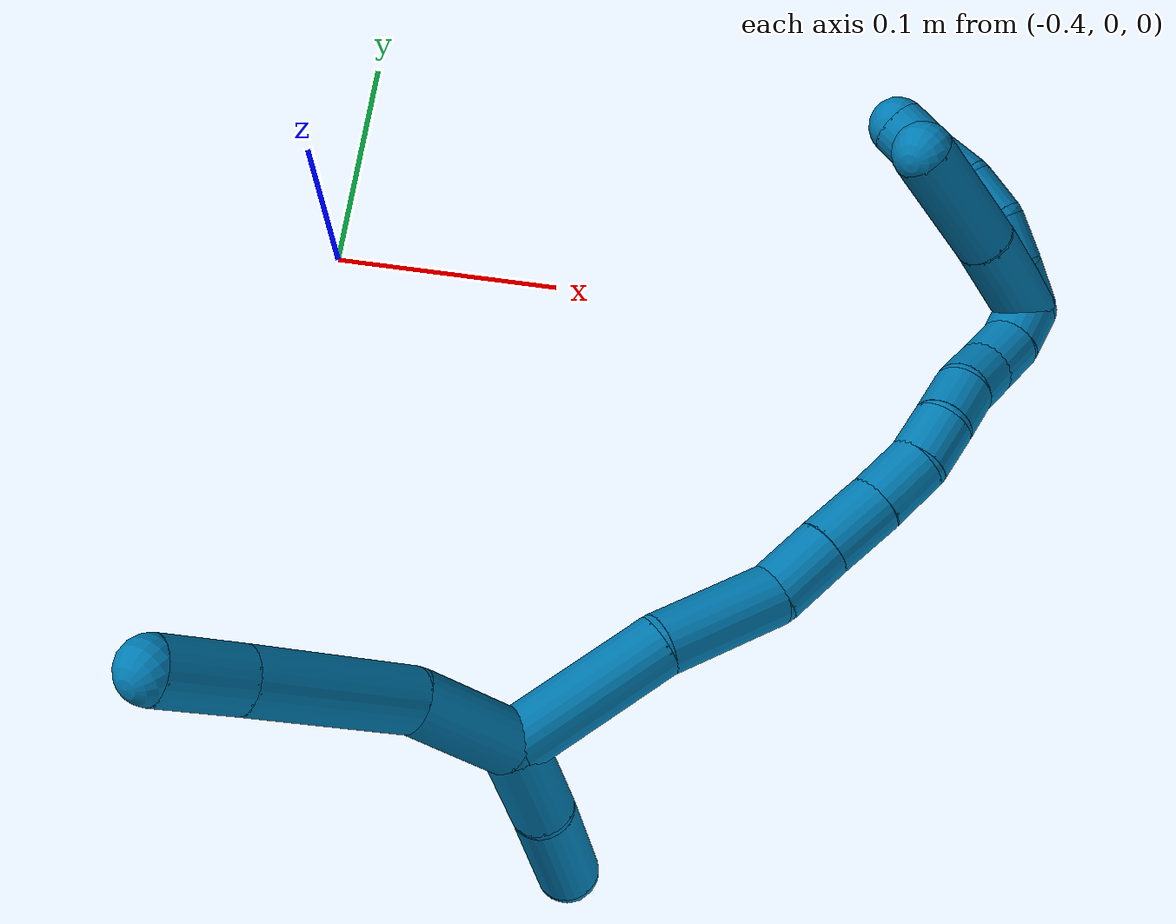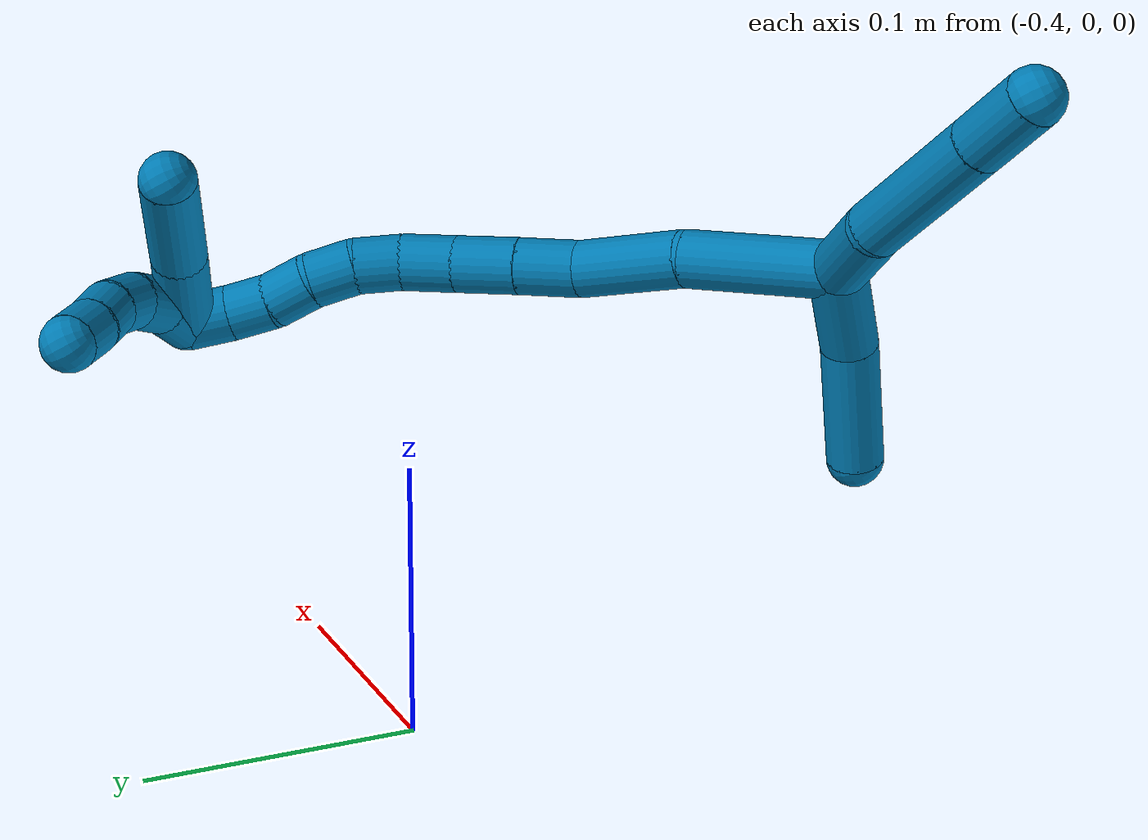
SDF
<sdf version="1.7">
 <world name="default">
  <model name="9">
   <static>0</static>
   <link name="9">
    <collision name="collision-cylinder-e_1_2_8">
     <pose>-0.010497 0.015371 0.012439 -0.890436 -0.488027 0.236499</pose>
     <geometry><cylinder><radius>0.0125</radius><length>0.044773</length></cylinder></geometry>
     <surface>
      <friction><ode><mu>1.16</mu><mu2>1.16</mu2><slip1>0</slip1><slip2>0</slip2></ode></friction>
      <contact><ode><kp>1e+06</kp><kd>1</kd><max_vel>0</max_vel><min_depth>0.001</min_depth></ode></contact>
     </surface>
    </collision>
    <visual name="visual-cylinder-e_1_2_8">
     <pose>-0.010497 0.015371 0.012439 -0.890436 -0.488027 0.236499</pose>
     <geometry><cylinder><radius>0.0125</radius><length>0.044773</length></cylinder></geometry>
     <material><ambient>0 0.490196 0.709804 1</ambient></material>
    </visual>
    <collision name="collision-cylinder-e_2_8_9">
     <pose>-0.033324 0.049646 0.051744 -0.613176 -0.359089 0.114788</pose>
     <geometry><cylinder><radius>0.0125</radius><length>0.070178</length></cylinder></geometry>
     <surface>
      <friction><ode><mu>1.16</mu><mu2>1.16</mu2><slip1>0</slip1><slip2>0</slip2></ode></friction>
      <contact><ode><kp>1e+06</kp><kd>1</kd><max_vel>0</max_vel><min_depth>0.001</min_depth></ode></contact>
     </surface>
    </collision>
    <visual name="visual-cylinder-e_2_8_9">
     <pose>-0.033324 0.049646 0.051744 -0.613176 -0.359089 0.114788</pose>
     <geometry><cylinder><radius>0.0125</radius><length>0.070178</length></cylinder></geometry>
     <material><ambient>0 0.490196 0.709804 1</ambient></material>
    </visual>
    <collision name="collision-cylinder-e_3_9_6">
     <pose>-0.051576 0.07794 0.092171 -0.605596 -0.344633 0.108636</pose>
     <geometry><cylinder><radius>0.0125</radius><length>0.035049</length></cylinder></geometry>
     <surface>
      <friction><ode><mu>1.16</mu><mu2>1.16</mu2><slip1>0</slip1><slip2>0</slip2></ode></friction>
      <contact><ode><kp>1e+06</kp><kd>1</kd><max_vel>0</max_vel><min_depth>0.001</min_depth></ode></contact>
     </surface>
    </collision>
    <visual name="visual-cylinder-e_3_9_6">
     <pose>-0.051576 0.07794 0.092171 -0.605596 -0.344633 0.108636</pose>
     <geometry><cylinder><radius>0.0125</radius><length>0.035049</length></cylinder></geometry>
     <material><ambient>0 0.490196 0.709804 1</ambient></material>
    </visual>
    <collision name="collision-cylinder-e_1_2_10">
     <pose>-0.000909 -0.019937 -0.006343 1.87881 -0.043435 -0.05939</pose>
     <geometry><cylinder><radius>0.0125</radius><length>0.041883</length></cylinder></geometry>
     <surface>
      <friction><ode><mu>1.16</mu><mu2>1.16</mu2><slip1>0</slip1><slip2>0</slip2></ode></friction>
      <contact><ode><kp>1e+06</kp><kd>1</kd><max_vel>0</max_vel><min_depth>0.001</min_depth></ode></contact>
     </surface>
    </collision>
    <visual name="visual-cylinder-e_1_2_10">
     <pose>-0.000909 -0.019937 -0.006343 1.87881 -0.043435 -0.05939</pose>
     <geometry><cylinder><radius>0.0125</radius><length>0.041883</length></cylinder></geometry>
     <material><ambient>0 0.490196 0.709804 1</ambient></material>
    </visual>
    <collision name="collision-cylinder-e_2_10_5">
     <pose>-0.007891 -0.065749 -0.024435 1.99707 -0.210513 -0.325119</pose>
     <geometry><cylinder><radius>0.0125</radius><length>0.058117</length></cylinder></geometry>
     <surface>
      <friction><ode><mu>1.16</mu><mu2>1.16</mu2><slip1>0</slip1><slip2>0</slip2></ode></friction>
      <contact><ode><kp>1e+06</kp><kd>1</kd><max_vel>0</max_vel><min_depth>0.001</min_depth></ode></contact>
     </surface>
    </collision>
    <visual name="visual-cylinder-e_2_10_5">
     <pose>-0.007891 -0.065749 -0.024435 1.99707 -0.210513 -0.325119</pose>
     <geometry><cylinder><radius>0.0125</radius><length>0.058117</length></cylinder></geometry>
     <material><ambient>0 0.490196 0.709804 1</ambient></material>
    </visual>
    <collision name="collision-cylinder-e_1_2_11">
     <pose>0.015965 0.007821 -0.028222 -2.87126 0.499119 -2.16129</pose>
     <geometry><cylinder><radius>0.0125</radius><length>0.066709</length></cylinder></geometry>
     <surface>
      <friction><ode><mu>1.16</mu><mu2>1.16</mu2><slip1>0</slip1><slip2>0</slip2></ode></friction>
      <contact><ode><kp>1e+06</kp><kd>1</kd><max_vel>0</max_vel><min_depth>0.001</min_depth></ode></contact>
     </surface>
    </collision>
    <visual name="visual-cylinder-e_1_2_11">
     <pose>0.015965 0.007821 -0.028222 -2.87126 0.499119 -2.16129</pose>
     <geometry><cylinder><radius>0.0125</radius><length>0.066709</length></cylinder></geometry>
     <material><ambient>0 0.490196 0.709804 1</ambient></material>
    </visual>
    <collision name="collision-cylinder-e_2_11_12">
     <pose>0.043966 0.015918 -0.078977 -3.12931 0.490537 -3.09254</pose>
     <geometry><cylinder><radius>0.0125</radius><length>0.051094</length></cylinder></geometry>
     <surface>
      <friction><ode><mu>1.16</mu><mu2>1.16</mu2><slip1>0</slip1><slip2>0</slip2></ode></friction>
      <contact><ode><kp>1e+06</kp><kd>1</kd><max_vel>0</max_vel><min_depth>0.001</min_depth></ode></contact>
     </surface>
    </collision>
    <visual name="visual-cylinder-e_2_11_12">
     <pose>0.043966 0.015918 -0.078977 -3.12931 0.490537 -3.09254</pose>
     <geometry><cylinder><radius>0.0125</radius><length>0.051094</length></cylinder></geometry>
     <material><ambient>0 0.490196 0.709804 1</ambient></material>
    </visual>
    <collision name="collision-cylinder-e_3_12_13">
     <pose>0.061169 0.02064 -0.113549 -2.7879 0.382785 -1.65158</pose>
     <geometry><cylinder><radius>0.0125</radius><length>0.02767</length></cylinder></geometry>
     <surface>
      <friction><ode><mu>1.16</mu><mu2>1.16</mu2><slip1>0</slip1><slip2>0</slip2></ode></friction>
      <contact><ode><kp>1e+06</kp><kd>1</kd><max_vel>0</max_vel><min_depth>0.001</min_depth></ode></contact>
     </surface>
    </collision>
    <visual name="visual-cylinder-e_3_12_13">
     <pose>0.061169 0.02064 -0.113549 -2.7879 0.382785 -1.65158</pose>
     <geometry><cylinder><radius>0.0125</radius><length>0.02767</length></cylinder></geometry>
     <material><ambient>0 0.490196 0.709804 1</ambient></material>
    </visual>
    <collision name="collision-cylinder-e_4_13_14">
     <pose>0.07171 0.029215 -0.137944 -2.81901 0.391221 -1.76659</pose>
     <geometry><cylinder><radius>0.0125</radius><length>0.028185</length></cylinder></geometry>
     <surface>
      <friction><ode><mu>1.16</mu><mu2>1.16</mu2><slip1>0</slip1><slip2>0</slip2></ode></friction>
      <contact><ode><kp>1e+06</kp><kd>1</kd><max_vel>0</max_vel><min_depth>0.001</min_depth></ode></contact>
     </surface>
    </collision>
    <visual name="visual-cylinder-e_4_13_14">
     <pose>0.07171 0.029215 -0.137944 -2.81901 0.391221 -1.76659</pose>
     <geometry><cylinder><radius>0.0125</radius><length>0.028185</length></cylinder></geometry>
     <material><ambient>0 0.490196 0.709804 1</ambient></material>
    </visual>
    <collision name="collision-cylinder-e_5_14_15">
     <pose>0.081424 0.037418 -0.161115 -2.78145 0.359288 -1.56836</pose>
     <geometry><cylinder><radius>0.0125</radius><length>0.024689</length></cylinder></geometry>
     <surface>
      <friction><ode><mu>1.16</mu><mu2>1.16</mu2><slip1>0</slip1><slip2>0</slip2></ode></friction>
      <contact><ode><kp>1e+06</kp><kd>1</kd><max_vel>0</max_vel><min_depth>0.001</min_depth></ode></contact>
     </surface>
    </collision>
    <visual name="visual-cylinder-e_5_14_15">
     <pose>0.081424 0.037418 -0.161115 -2.78145 0.359288 -1.56836</pose>
     <geometry><cylinder><radius>0.0125</radius><length>0.024689</length></cylinder></geometry>
     <material><ambient>0 0.490196 0.709804 1</ambient></material>
    </visual>
    <collision name="collision-cylinder-e_6_15_16">
     <pose>0.087133 0.045663 -0.181504 -2.73065 0.130356 -0.60701</pose>
     <geometry><cylinder><radius>0.0125</radius><length>0.021067</length></cylinder></geometry>
     <surface>
      <friction><ode><mu>1.16</mu><mu2>1.16</mu2><slip1>0</slip1><slip2>0</slip2></ode></friction>
      <contact><ode><kp>1e+06</kp><kd>1</kd><max_vel>0</max_vel><min_depth>0.001</min_depth></ode></contact>
     </surface>
    </collision>
    <visual name="visual-cylinder-e_6_15_16">
     <pose>0.087133 0.045663 -0.181504 -2.73065 0.130356 -0.60701</pose>
     <geometry><cylinder><radius>0.0125</radius><length>0.021067</length></cylinder></geometry>
     <material><ambient>0 0.490196 0.709804 1</ambient></material>
    </visual>
    <collision name="collision-cylinder-e_7_16_17">
     <pose>0.088466 0.052125 -0.20101 -2.91491 -0.003622 0.031816</pose>
     <geometry><cylinder><radius>0.0125</radius><length>0.020384</length></cylinder></geometry>
     <surface>
      <friction><ode><mu>1.16</mu><mu2>1.16</mu2><slip1>0</slip1><slip2>0</slip2></ode></friction>
      <contact><ode><kp>1e+06</kp><kd>1</kd><max_vel>0</max_vel><min_depth>0.001</min_depth></ode></contact>
     </surface>
    </collision>
    <visual name="visual-cylinder-e_7_16_17">
     <pose>0.088466 0.052125 -0.20101 -2.91491 -0.003622 0.031816</pose>
     <geometry><cylinder><radius>0.0125</radius><length>0.020384</length></cylinder></geometry>
     <material><ambient>0 0.490196 0.709804 1</ambient></material>
    </visual>
    <collision name="collision-cylinder-e_8_17_18">
     <pose>0.088626 0.054274 -0.220953 3.12743 0.019722 1.89571</pose>
     <geometry><cylinder><radius>0.0125</radius><length>0.020029</length></cylinder></geometry>
     <surface>
      <friction><ode><mu>1.16</mu><mu2>1.16</mu2><slip1>0</slip1><slip2>0</slip2></ode></friction>
      <contact><ode><kp>1e+06</kp><kd>1</kd><max_vel>0</max_vel><min_depth>0.001</min_depth></ode></contact>
     </surface>
    </collision>
    <visual name="visual-cylinder-e_8_17_18">
     <pose>0.088626 0.054274 -0.220953 3.12743 0.019722 1.89571</pose>
     <geometry><cylinder><radius>0.0125</radius><length>0.020029</length></cylinder></geometry>
     <material><ambient>0 0.490196 0.709804 1</ambient></material>
    </visual>
    <collision name="collision-cylinder-e_9_18_19">
     <pose>0.090271 0.05549 -0.240794 -3.00437 0.144873 -1.62517</pose>
     <geometry><cylinder><radius>0.0125</radius><length>0.020054</length></cylinder></geometry>
     <surface>
      <friction><ode><mu>1.16</mu><mu2>1.16</mu2><slip1>0</slip1><slip2>0</slip2></ode></friction>
      <contact><ode><kp>1e+06</kp><kd>1</kd><max_vel>0</max_vel><min_depth>0.001</min_depth></ode></contact>
     </surface>
    </collision>
    <visual name="visual-cylinder-e_9_18_19">
     <pose>0.090271 0.05549 -0.240794 -3.00437 0.144873 -1.62517</pose>
     <geometry><cylinder><radius>0.0125</radius><length>0.020054</length></cylinder></geometry>
     <material><ambient>0 0.490196 0.709804 1</ambient></material>
    </visual>
    <collision name="collision-cylinder-e_10_19_1">
     <pose>0.091763 0.060284 -0.260076 -2.79284 0.004353 -0.024706</pose>
     <geometry><cylinder><radius>0.0125</radius><length>0.020117</length></cylinder></geometry>
     <surface>
      <friction><ode><mu>1.16</mu><mu2>1.16</mu2><slip1>0</slip1><slip2>0</slip2></ode></friction>
      <contact><ode><kp>1e+06</kp><kd>1</kd><max_vel>0</max_vel><min_depth>0.001</min_depth></ode></contact>
     </surface>
    </collision>
    <visual name="visual-cylinder-e_10_19_1">
     <pose>0.091763 0.060284 -0.260076 -2.79284 0.004353 -0.024706</pose>
     <geometry><cylinder><radius>0.0125</radius><length>0.020117</length></cylinder></geometry>
     <material><ambient>0 0.490196 0.709804 1</ambient></material>
    </visual>
    <collision name="collision-cylinder-e_1_1_20">
     <pose>0.088773 0.073246 -0.269819 -1.60125 -0.30821 0.317583</pose>
     <geometry><cylinder><radius>0.0125</radius><length>0.02</length></cylinder></geometry>
     <surface>
      <friction><ode><mu>1.16</mu><mu2>1.16</mu2><slip1>0</slip1><slip2>0</slip2></ode></friction>
      <contact><ode><kp>1e+06</kp><kd>1</kd><max_vel>0</max_vel><min_depth>0.001</min_depth></ode></contact>
     </surface>
    </collision>
    <visual name="visual-cylinder-e_1_1_20">
     <pose>0.088773 0.073246 -0.269819 -1.60125 -0.30821 0.317583</pose>
     <geometry><cylinder><radius>0.0125</radius><length>0.02</length></cylinder></geometry>
     <material><ambient>0 0.490196 0.709804 1</ambient></material>
    </visual>
    <collision name="collision-cylinder-e_2_20_21">
     <pose>0.081253 0.091378 -0.272514 -1.84324 -0.465223 0.605149</pose>
     <geometry><cylinder><radius>0.0125</radius><length>0.02</length></cylinder></geometry>
     <surface>
      <friction><ode><mu>1.16</mu><mu2>1.16</mu2><slip1>0</slip1><slip2>0</slip2></ode></friction>
      <contact><ode><kp>1e+06</kp><kd>1</kd><max_vel>0</max_vel><min_depth>0.001</min_depth></ode></contact>
     </surface>
    </collision>
    <visual name="visual-cylinder-e_2_20_21">
     <pose>0.081253 0.091378 -0.272514 -1.84324 -0.465223 0.605149</pose>
     <geometry><cylinder><radius>0.0125</radius><length>0.02</length></cylinder></geometry>
     <material><ambient>0 0.490196 0.709804 1</ambient></material>
    </visual>
    <collision name="collision-cylinder-e_3_21_22">
     <pose>0.069598 0.106608 -0.277095 -1.88832 -0.799425 1.05642</pose>
     <geometry><cylinder><radius>0.0125</radius><length>0.02</length></cylinder></geometry>
     <surface>
      <friction><ode><mu>1.16</mu><mu2>1.16</mu2><slip1>0</slip1><slip2>0</slip2></ode></friction>
      <contact><ode><kp>1e+06</kp><kd>1</kd><max_vel>0</max_vel><min_depth>0.001</min_depth></ode></contact>
     </surface>
    </collision>
    <visual name="visual-cylinder-e_3_21_22">
     <pose>0.069598 0.106608 -0.277095 -1.88832 -0.799425 1.05642</pose>
     <geometry><cylinder><radius>0.0125</radius><length>0.02</length></cylinder></geometry>
     <material><ambient>0 0.490196 0.709804 1</ambient></material>
    </visual>
    <collision name="collision-cylinder-e_4_22_23">
     <pose>0.053765 0.11786 -0.281148 -1.95589 -1.04782 1.4178</pose>
     <geometry><cylinder><radius>0.0125</radius><length>0.02</length></cylinder></geometry>
     <surface>
      <friction><ode><mu>1.16</mu><mu2>1.16</mu2><slip1>0</slip1><slip2>0</slip2></ode></friction>
      <contact><ode><kp>1e+06</kp><kd>1</kd><max_vel>0</max_vel><min_depth>0.001</min_depth></ode></contact>
     </surface>
    </collision>
    <visual name="visual-cylinder-e_4_22_23">
     <pose>0.053765 0.11786 -0.281148 -1.95589 -1.04782 1.4178</pose>
     <geometry><cylinder><radius>0.0125</radius><length>0.02</length></cylinder></geometry>
     <material><ambient>0 0.490196 0.709804 1</ambient></material>
    </visual>
    <collision name="collision-cylinder-e_5_23_4">
     <pose>0.036935 0.127701 -0.285503 -2.01473 -0.955456 1.37307</pose>
     <geometry><cylinder><radius>0.0125</radius><length>0.02</length></cylinder></geometry>
     <surface>
      <friction><ode><mu>1.16</mu><mu2>1.16</mu2><slip1>0</slip1><slip2>0</slip2></ode></friction>
      <contact><ode><kp>1e+06</kp><kd>1</kd><max_vel>0</max_vel><min_depth>0.001</min_depth></ode></contact>
     </surface>
    </collision>
    <visual name="visual-cylinder-e_5_23_4">
     <pose>0.036935 0.127701 -0.285503 -2.01473 -0.955456 1.37307</pose>
     <geometry><cylinder><radius>0.0125</radius><length>0.02</length></cylinder></geometry>
     <material><ambient>0 0.490196 0.709804 1</ambient></material>
    </visual>
    <collision name="collision-cylinder-e_1_1_24">
     <pose>0.087988 0.083781 -0.258916 -1.08416 -0.166722 0.100558</pose>
     <geometry><cylinder><radius>0.0125</radius><length>0.046026</length></cylinder></geometry>
     <surface>
      <friction><ode><mu>1.16</mu><mu2>1.16</mu2><slip1>0</slip1><slip2>0</slip2></ode></friction>
      <contact><ode><kp>1e+06</kp><kd>1</kd><max_vel>0</max_vel><min_depth>0.001</min_depth></ode></contact>
     </surface>
    </collision>
    <visual name="visual-cylinder-e_1_1_24">
     <pose>0.087988 0.083781 -0.258916 -1.08416 -0.166722 0.100558</pose>
     <geometry><cylinder><radius>0.0125</radius><length>0.046026</length></cylinder></geometry>
     <material><ambient>0 0.490196 0.709804 1</ambient></material>
    </visual>
    <collision name="collision-cylinder-e_2_24_3">
     <pose>0.077687 0.127135 -0.236319 -1.09567 -0.242562 0.14845</pose>
     <geometry><cylinder><radius>0.0125</radius><length>0.053974</length></cylinder></geometry>
     <surface>
      <friction><ode><mu>1.16</mu><mu2>1.16</mu2><slip1>0</slip1><slip2>0</slip2></ode></friction>
      <contact><ode><kp>1e+06</kp><kd>1</kd><max_vel>0</max_vel><min_depth>0.001</min_depth></ode></contact>
     </surface>
    </collision>
    <visual name="visual-cylinder-e_2_24_3">
     <pose>0.077687 0.127135 -0.236319 -1.09567 -0.242562 0.14845</pose>
     <geometry><cylinder><radius>0.0125</radius><length>0.053974</length></cylinder></geometry>
     <material><ambient>0 0.490196 0.709804 1</ambient></material>
    </visual>
    <collision name="collision-sphere-3">
     <pose>0.071205 0.150431 -0.224335 0 -0 0</pose>
     <geometry><sphere><radius>0.0125</radius></sphere></geometry>
     <surface>
      <friction><ode><mu>1.16</mu><mu2>1.16</mu2><slip1>0</slip1><slip2>0</slip2></ode></friction>
      <contact><ode><kp>1e+06</kp><kd>1</kd><max_vel>0</max_vel><min_depth>0.001</min_depth></ode></contact>
     </surface>
    </collision>
    <visual name="visual-sphere-3">
     <pose>0.071205 0.150431 -0.224335 0 -0 0</pose>
     <geometry><sphere><radius>0.0125</radius></sphere></geometry>
     <material><ambient>0 0.490196 0.709804 1</ambient></material>
    </visual>
    <collision name="collision-sphere-24">
     <pose>0.084169 0.10384 -0.248303 0 -0 0</pose>
     <geometry><sphere><radius>0.0125</radius></sphere></geometry>
     <surface>
      <friction><ode><mu>1.16</mu><mu2>1.16</mu2><slip1>0</slip1><slip2>0</slip2></ode></friction>
      <contact><ode><kp>1e+06</kp><kd>1</kd><max_vel>0</max_vel><min_depth>0.001</min_depth></ode></contact>
     </surface>
    </collision>
    <visual name="visual-sphere-24">
     <pose>0.084169 0.10384 -0.248303 0 -0 0</pose>
     <geometry><sphere><radius>0.0125</radius></sphere></geometry>
     <material><ambient>0 0.490196 0.709804 1</ambient></material>
    </visual>
    <collision name="collision-sphere-4">
     <pose>0.02877 0.132914 -0.287983 0 -0 0</pose>
     <geometry><sphere><radius>0.0125</radius></sphere></geometry>
     <surface>
      <friction><ode><mu>1.16</mu><mu2>1.16</mu2><slip1>0</slip1><slip2>0</slip2></ode></friction>
      <contact><ode><kp>1e+06</kp><kd>1</kd><max_vel>0</max_vel><min_depth>0.001</min_depth></ode></contact>
     </surface>
    </collision>
    <visual name="visual-sphere-4">
     <pose>0.02877 0.132914 -0.287983 0 -0 0</pose>
     <geometry><sphere><radius>0.0125</radius></sphere></geometry>
     <material><ambient>0 0.490196 0.709804 1</ambient></material>
    </visual>
    <collision name="collision-sphere-23">
     <pose>0.045101 0.122489 -0.283024 0 -0 0</pose>
     <geometry><sphere><radius>0.0125</radius></sphere></geometry>
     <surface>
      <friction><ode><mu>1.16</mu><mu2>1.16</mu2><slip1>0</slip1><slip2>0</slip2></ode></friction>
      <contact><ode><kp>1e+06</kp><kd>1</kd><max_vel>0</max_vel><min_depth>0.001</min_depth></ode></contact>
     </surface>
    </collision>
    <visual name="visual-sphere-23">
     <pose>0.045101 0.122489 -0.283024 0 -0 0</pose>
     <geometry><sphere><radius>0.0125</radius></sphere></geometry>
     <material><ambient>0 0.490196 0.709804 1</ambient></material>
    </visual>
    <collision name="collision-sphere-22">
     <pose>0.062428 0.113231 -0.279272 0 -0 0</pose>
     <geometry><sphere><radius>0.0125</radius></sphere></geometry>
     <surface>
      <friction><ode><mu>1.16</mu><mu2>1.16</mu2><slip1>0</slip1><slip2>0</slip2></ode></friction>
      <contact><ode><kp>1e+06</kp><kd>1</kd><max_vel>0</max_vel><min_depth>0.001</min_depth></ode></contact>
     </surface>
    </collision>
    <visual name="visual-sphere-22">
     <pose>0.062428 0.113231 -0.279272 0 -0 0</pose>
     <geometry><sphere><radius>0.0125</radius></sphere></geometry>
     <material><ambient>0 0.490196 0.709804 1</ambient></material>
    </visual>
    <collision name="collision-sphere-21">
     <pose>0.076767 0.099986 -0.274919 0 -0 0</pose>
     <geometry><sphere><radius>0.0125</radius></sphere></geometry>
     <surface>
      <friction><ode><mu>1.16</mu><mu2>1.16</mu2><slip1>0</slip1><slip2>0</slip2></ode></friction>
      <contact><ode><kp>1e+06</kp><kd>1</kd><max_vel>0</max_vel><min_depth>0.001</min_depth></ode></contact>
     </surface>
    </collision>
    <visual name="visual-sphere-21">
     <pose>0.076767 0.099986 -0.274919 0 -0 0</pose>
     <geometry><sphere><radius>0.0125</radius></sphere></geometry>
     <material><ambient>0 0.490196 0.709804 1</ambient></material>
    </visual>
    <collision name="collision-sphere-20">
     <pose>0.08574 0.08277 -0.270109 0 -0 0</pose>
     <geometry><sphere><radius>0.0125</radius></sphere></geometry>
     <surface>
      <friction><ode><mu>1.16</mu><mu2>1.16</mu2><slip1>0</slip1><slip2>0</slip2></ode></friction>
      <contact><ode><kp>1e+06</kp><kd>1</kd><max_vel>0</max_vel><min_depth>0.001</min_depth></ode></contact>
     </surface>
    </collision>
    <visual name="visual-sphere-20">
     <pose>0.08574 0.08277 -0.270109 0 -0 0</pose>
     <geometry><sphere><radius>0.0125</radius></sphere></geometry>
     <material><ambient>0 0.490196 0.709804 1</ambient></material>
    </visual>
    <collision name="collision-sphere-5">
     <pose>-0.013963 -0.091622 -0.036185 0 -0 0</pose>
     <geometry><sphere><radius>0.0125</radius></sphere></geometry>
     <surface>
      <friction><ode><mu>1.16</mu><mu2>1.16</mu2><slip1>0</slip1><slip2>0</slip2></ode></friction>
      <contact><ode><kp>1e+06</kp><kd>1</kd><max_vel>0</max_vel><min_depth>0.001</min_depth></ode></contact>
     </surface>
    </collision>
    <visual name="visual-sphere-5">
     <pose>-0.013963 -0.091622 -0.036185 0 -0 0</pose>
     <geometry><sphere><radius>0.0125</radius></sphere></geometry>
     <material><ambient>0 0.490196 0.709804 1</ambient></material>
    </visual>
    <collision name="collision-sphere-10">
     <pose>-0.001819 -0.039875 -0.012685 0 -0 0</pose>
     <geometry><sphere><radius>0.0125</radius></sphere></geometry>
     <surface>
      <friction><ode><mu>1.16</mu><mu2>1.16</mu2><slip1>0</slip1><slip2>0</slip2></ode></friction>
      <contact><ode><kp>1e+06</kp><kd>1</kd><max_vel>0</max_vel><min_depth>0.001</min_depth></ode></contact>
     </surface>
    </collision>
    <visual name="visual-sphere-10">
     <pose>-0.001819 -0.039875 -0.012685 0 -0 0</pose>
     <geometry><sphere><radius>0.0125</radius></sphere></geometry>
     <material><ambient>0 0.490196 0.709804 1</ambient></material>
    </visual>
    <collision name="collision-sphere-6">
     <pose>-0.057497 0.087329 0.105732 0 -0 0</pose>
     <geometry><sphere><radius>0.0125</radius></sphere></geometry>
     <surface>
      <friction><ode><mu>1.16</mu><mu2>1.16</mu2><slip1>0</slip1><slip2>0</slip2></ode></friction>
      <contact><ode><kp>1e+06</kp><kd>1</kd><max_vel>0</max_vel><min_depth>0.001</min_depth></ode></contact>
     </surface>
    </collision>
    <visual name="visual-sphere-6">
     <pose>-0.057497 0.087329 0.105732 0 -0 0</pose>
     <geometry><sphere><radius>0.0125</radius></sphere></geometry>
     <material><ambient>0 0.490196 0.709804 1</ambient></material>
    </visual>
    <collision name="collision-sphere-9">
     <pose>-0.045655 0.06855 0.07861 0 -0 0</pose>
     <geometry><sphere><radius>0.0125</radius></sphere></geometry>
     <surface>
      <friction><ode><mu>1.16</mu><mu2>1.16</mu2><slip1>0</slip1><slip2>0</slip2></ode></friction>
      <contact><ode><kp>1e+06</kp><kd>1</kd><max_vel>0</max_vel><min_depth>0.001</min_depth></ode></contact>
     </surface>
    </collision>
    <visual name="visual-sphere-9">
     <pose>-0.045655 0.06855 0.07861 0 -0 0</pose>
     <geometry><sphere><radius>0.0125</radius></sphere></geometry>
     <material><ambient>0 0.490196 0.709804 1</ambient></material>
    </visual>
    <collision name="collision-sphere-2">
     <geometry><sphere><radius>0.0125</radius></sphere></geometry>
     <surface>
      <friction><ode><mu>1.16</mu><mu2>1.16</mu2><slip1>0</slip1><slip2>0</slip2></ode></friction>
      <contact><ode><kp>1e+06</kp><kd>1</kd><max_vel>0</max_vel><min_depth>0.001</min_depth></ode></contact>
     </surface>
    </collision>
    <visual name="visual-sphere-2">
     <geometry><sphere><radius>0.0125</radius></sphere></geometry>
     <material><ambient>0 0.490196 0.709804 1</ambient></material>
    </visual>
    <collision name="collision-sphere-19">
     <pose>0.091719 0.056847 -0.250623 0 -0 0</pose>
     <geometry><sphere><radius>0.0125</radius></sphere></geometry>
     <surface>
      <friction><ode><mu>1.16</mu><mu2>1.16</mu2><slip1>0</slip1><slip2>0</slip2></ode></friction>
      <contact><ode><kp>1e+06</kp><kd>1</kd><max_vel>0</max_vel><min_depth>0.001</min_depth></ode></contact>
     </surface>
    </collision>
    <visual name="visual-sphere-19">
     <pose>0.091719 0.056847 -0.250623 0 -0 0</pose>
     <geometry><sphere><radius>0.0125</radius></sphere></geometry>
     <material><ambient>0 0.490196 0.709804 1</ambient></material>
    </visual>
    <collision name="collision-sphere-8">
     <pose>-0.020993 0.030741 0.024878 0 -0 0</pose>
     <geometry><sphere><radius>0.0125</radius></sphere></geometry>
     <surface>
      <friction><ode><mu>1.16</mu><mu2>1.16</mu2><slip1>0</slip1><slip2>0</slip2></ode></friction>
      <contact><ode><kp>1e+06</kp><kd>1</kd><max_vel>0</max_vel><min_depth>0.001</min_depth></ode></contact>
     </surface>
    </collision>
    <visual name="visual-sphere-8">
     <pose>-0.020993 0.030741 0.024878 0 -0 0</pose>
     <geometry><sphere><radius>0.0125</radius></sphere></geometry>
     <material><ambient>0 0.490196 0.709804 1</ambient></material>
    </visual>
    <collision name="collision-sphere-11">
     <pose>0.031931 0.015642 -0.056444 0 -0 0</pose>
     <geometry><sphere><radius>0.0125</radius></sphere></geometry>
     <surface>
      <friction><ode><mu>1.16</mu><mu2>1.16</mu2><slip1>0</slip1><slip2>0</slip2></ode></friction>
      <contact><ode><kp>1e+06</kp><kd>1</kd><max_vel>0</max_vel><min_depth>0.001</min_depth></ode></contact>
     </surface>
    </collision>
    <visual name="visual-sphere-11">
     <pose>0.031931 0.015642 -0.056444 0 -0 0</pose>
     <geometry><sphere><radius>0.0125</radius></sphere></geometry>
     <material><ambient>0 0.490196 0.709804 1</ambient></material>
    </visual>
    <collision name="collision-sphere-12">
     <pose>0.056001 0.016195 -0.10151 0 -0 0</pose>
     <geometry><sphere><radius>0.0125</radius></sphere></geometry>
     <surface>
      <friction><ode><mu>1.16</mu><mu2>1.16</mu2><slip1>0</slip1><slip2>0</slip2></ode></friction>
      <contact><ode><kp>1e+06</kp><kd>1</kd><max_vel>0</max_vel><min_depth>0.001</min_depth></ode></contact>
     </surface>
    </collision>
    <visual name="visual-sphere-12">
     <pose>0.056001 0.016195 -0.10151 0 -0 0</pose>
     <geometry><sphere><radius>0.0125</radius></sphere></geometry>
     <material><ambient>0 0.490196 0.709804 1</ambient></material>
    </visual>
    <collision name="collision-sphere-13">
     <pose>0.066336 0.025085 -0.125589 0 -0 0</pose>
     <geometry><sphere><radius>0.0125</radius></sphere></geometry>
     <surface>
      <friction><ode><mu>1.16</mu><mu2>1.16</mu2><slip1>0</slip1><slip2>0</slip2></ode></friction>
      <contact><ode><kp>1e+06</kp><kd>1</kd><max_vel>0</max_vel><min_depth>0.001</min_depth></ode></contact>
     </surface>
    </collision>
    <visual name="visual-sphere-13">
     <pose>0.066336 0.025085 -0.125589 0 -0 0</pose>
     <geometry><sphere><radius>0.0125</radius></sphere></geometry>
     <material><ambient>0 0.490196 0.709804 1</ambient></material>
    </visual>
    <collision name="collision-sphere-14">
     <pose>0.077083 0.033345 -0.1503 0 -0 0</pose>
     <geometry><sphere><radius>0.0125</radius></sphere></geometry>
     <surface>
      <friction><ode><mu>1.16</mu><mu2>1.16</mu2><slip1>0</slip1><slip2>0</slip2></ode></friction>
      <contact><ode><kp>1e+06</kp><kd>1</kd><max_vel>0</max_vel><min_depth>0.001</min_depth></ode></contact>
     </surface>
    </collision>
    <visual name="visual-sphere-14">
     <pose>0.077083 0.033345 -0.1503 0 -0 0</pose>
     <geometry><sphere><radius>0.0125</radius></sphere></geometry>
     <material><ambient>0 0.490196 0.709804 1</ambient></material>
    </visual>
    <collision name="collision-sphere-15">
     <pose>0.085764 0.04149 -0.17193 0 -0 0</pose>
     <geometry><sphere><radius>0.0125</radius></sphere></geometry>
     <surface>
      <friction><ode><mu>1.16</mu><mu2>1.16</mu2><slip1>0</slip1><slip2>0</slip2></ode></friction>
      <contact><ode><kp>1e+06</kp><kd>1</kd><max_vel>0</max_vel><min_depth>0.001</min_depth></ode></contact>
     </surface>
    </collision>
    <visual name="visual-sphere-15">
     <pose>0.085764 0.04149 -0.17193 0 -0 0</pose>
     <geometry><sphere><radius>0.0125</radius></sphere></geometry>
     <material><ambient>0 0.490196 0.709804 1</ambient></material>
    </visual>
    <collision name="collision-sphere-16">
     <pose>0.088503 0.049835 -0.191079 0 -0 0</pose>
     <geometry><sphere><radius>0.0125</radius></sphere></geometry>
     <surface>
      <friction><ode><mu>1.16</mu><mu2>1.16</mu2><slip1>0</slip1><slip2>0</slip2></ode></friction>
      <contact><ode><kp>1e+06</kp><kd>1</kd><max_vel>0</max_vel><min_depth>0.001</min_depth></ode></contact>
     </surface>
    </collision>
    <visual name="visual-sphere-16">
     <pose>0.088503 0.049835 -0.191079 0 -0 0</pose>
     <geometry><sphere><radius>0.0125</radius></sphere></geometry>
     <material><ambient>0 0.490196 0.709804 1</ambient></material>
    </visual>
    <collision name="collision-sphere-17">
     <pose>0.088429 0.054416 -0.210942 0 -0 0</pose>
     <geometry><sphere><radius>0.0125</radius></sphere></geometry>
     <surface>
      <friction><ode><mu>1.16</mu><mu2>1.16</mu2><slip1>0</slip1><slip2>0</slip2></ode></friction>
      <contact><ode><kp>1e+06</kp><kd>1</kd><max_vel>0</max_vel><min_depth>0.001</min_depth></ode></contact>
     </surface>
    </collision>
    <visual name="visual-sphere-17">
     <pose>0.088429 0.054416 -0.210942 0 -0 0</pose>
     <geometry><sphere><radius>0.0125</radius></sphere></geometry>
     <material><ambient>0 0.490196 0.709804 1</ambient></material>
    </visual>
    <collision name="collision-sphere-18">
     <pose>0.088824 0.054132 -0.230965 0 -0 0</pose>
     <geometry><sphere><radius>0.0125</radius></sphere></geometry>
     <surface>
      <friction><ode><mu>1.16</mu><mu2>1.16</mu2><slip1>0</slip1><slip2>0</slip2></ode></friction>
      <contact><ode><kp>1e+06</kp><kd>1</kd><max_vel>0</max_vel><min_depth>0.001</min_depth></ode></contact>
     </surface>
    </collision>
    <visual name="visual-sphere-18">
     <pose>0.088824 0.054132 -0.230965 0 -0 0</pose>
     <geometry><sphere><radius>0.0125</radius></sphere></geometry>
     <material><ambient>0 0.490196 0.709804 1</ambient></material>
    </visual>
    <collision name="collision-sphere-1">
     <pose>0.091807 0.063722 -0.269529 0 -0 0</pose>
     <geometry><sphere><radius>0.0125</radius></sphere></geometry>
     <surface>
      <friction><ode><mu>1.16</mu><mu2>1.16</mu2><slip1>0</slip1><slip2>0</slip2></ode></friction>
      <contact><ode><kp>1e+06</kp><kd>1</kd><max_vel>0</max_vel><min_depth>0.001</min_depth></ode></contact>
     </surface>
    </collision>
    <visual name="visual-sphere-1">
     <pose>0.091807 0.063722 -0.269529 0 -0 0</pose>
     <geometry><sphere><radius>0.0125</radius></sphere></geometry>
     <material><ambient>0 0.490196 0.709804 1</ambient></material>
    </visual>
    <inertial>
     <pose>0.037123 0.04319 -0.114659 0 -0 0</pose>
     <mass>0.75</mass>
     <inertia><ixx>4.5e-05</ixx><ixy>0</ixy><ixz>0</ixz><iyy>6.7e-05</iyy><iyz>0</iyz><izz>-4.5e-05</izz></inertia>
    </inertial>
   </link>
   <pose>-0.275248 -0.238398 0.108419 1.00088 -0.41903 -0.23487</pose>
  </model>
 </world>
</sdf>
